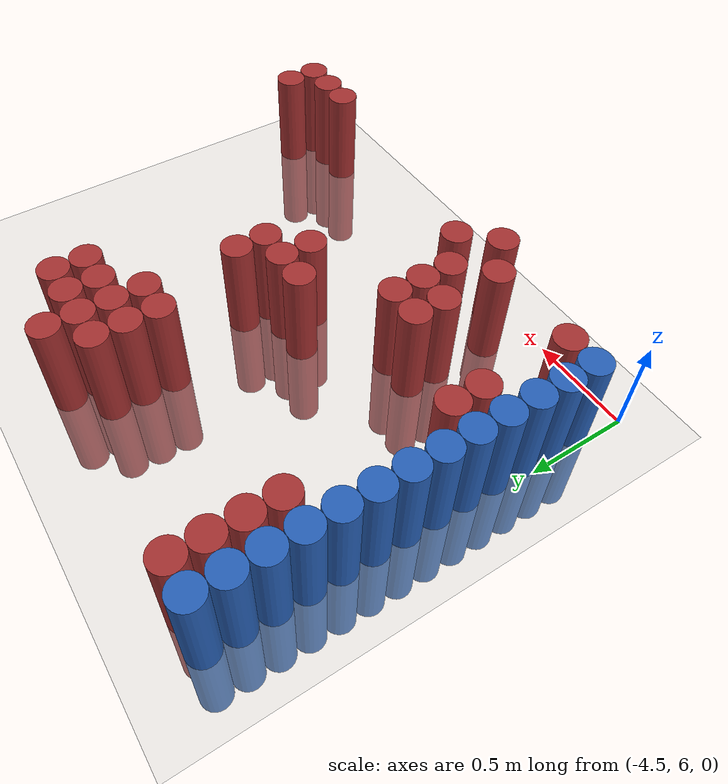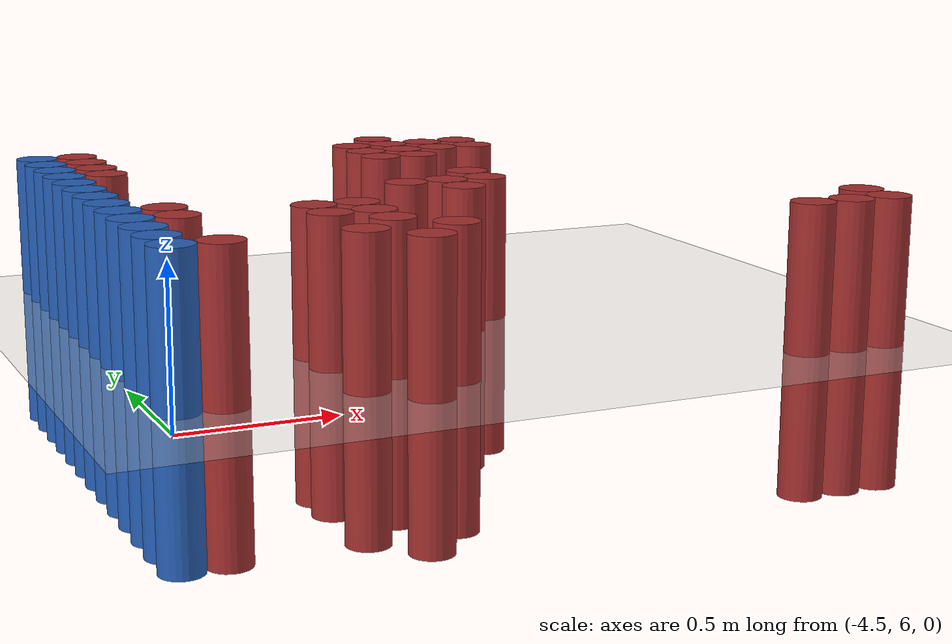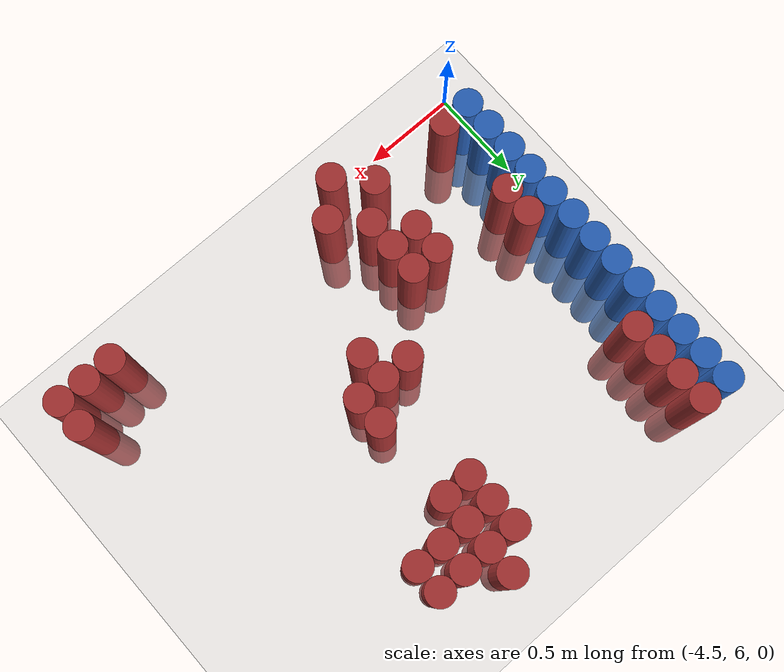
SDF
<sdf version="1.6">
 <world name="default">
  <model name="ground_plane">
   <static>1</static>
   <link name="link">
    <collision name="collision">
     <geometry><plane><normal>0 0 1</normal><size>100 100</size></plane></geometry>
     <surface><friction><ode><mu>100</mu><mu2>50</mu2></ode></friction></surface>
    </collision>
    <visual name="visual">
     <cast_shadows>0</cast_shadows>
     <geometry><plane><normal>0 0 1</normal><size>100 100</size></plane></geometry>
     <material>
      <script><uri>file://media/materials/scripts/gazebo.material</uri><name>Gazebo/Grey</name></script>
     </material>
    </visual>
   </link>
  </model>
  <model name="unit_cylinder_103">
   <static>1</static>
   <pose>-4.425000 6.225000 0.000000 0.000000 0.000000 0.000000</pose>
   <link name="link">
    <inertial>
     <mass>1</mass>
     <inertia><ixx>0.145833</ixx><ixy>0</ixy><ixz>0</ixz><iyy>0.145833</iyy><iyz>0</iyz><izz>0.125</izz></inertia>
    </inertial>
    <collision name="collision">
     <geometry><cylinder><radius>0.075000</radius><length>1</length></cylinder></geometry>
    </collision>
    <visual name="visual">
     <geometry><cylinder><radius>0.075000</radius><length>1</length></cylinder></geometry>
     <material>
      <ambient>0.152000 0.379000 0.720000 1</ambient>
      <diffuse>0.152000 0.379000 0.720000 1</diffuse>
     </material>
     <material>
      <script><name>Gazebo/Grey</name><uri>file://media/materials/scripts/gazebo.material</uri></script>
     </material>
    </visual>
   </link>
  </model>
  <model name="unit_cylinder_104">
   <static>1</static>
   <pose>-4.425000 6.375000 0.000000 0.000000 0.000000 0.000000</pose>
   <link name="link">
    <inertial>
     <mass>1</mass>
     <inertia><ixx>0.145833</ixx><ixy>0</ixy><ixz>0</ixz><iyy>0.145833</iyy><iyz>0</iyz><izz>0.125</izz></inertia>
    </inertial>
    <collision name="collision">
     <geometry><cylinder><radius>0.075000</radius><length>1</length></cylinder></geometry>
    </collision>
    <visual name="visual">
     <geometry><cylinder><radius>0.075000</radius><length>1</length></cylinder></geometry>
     <material>
      <ambient>0.152000 0.379000 0.720000 1</ambient>
      <diffuse>0.152000 0.379000 0.720000 1</diffuse>
     </material>
     <material>
      <script><name>Gazebo/Grey</name><uri>file://media/materials/scripts/gazebo.material</uri></script>
     </material>
    </visual>
   </link>
  </model>
  <model name="unit_cylinder_105">
   <static>1</static>
   <pose>-4.425000 6.525000 0.000000 0.000000 0.000000 0.000000</pose>
   <link name="link">
    <inertial>
     <mass>1</mass>
     <inertia><ixx>0.145833</ixx><ixy>0</ixy><ixz>0</ixz><iyy>0.145833</iyy><iyz>0</iyz><izz>0.125</izz></inertia>
    </inertial>
    <collision name="collision">
     <geometry><cylinder><radius>0.075000</radius><length>1</length></cylinder></geometry>
    </collision>
    <visual name="visual">
     <geometry><cylinder><radius>0.075000</radius><length>1</length></cylinder></geometry>
     <material>
      <ambient>0.152000 0.379000 0.720000 1</ambient>
      <diffuse>0.152000 0.379000 0.720000 1</diffuse>
     </material>
     <material>
      <script><name>Gazebo/Grey</name><uri>file://media/materials/scripts/gazebo.material</uri></script>
     </material>
    </visual>
   </link>
  </model>
  <model name="unit_cylinder_106">
   <static>1</static>
   <pose>-4.425000 6.675000 0.000000 0.000000 0.000000 0.000000</pose>
   <link name="link">
    <inertial>
     <mass>1</mass>
     <inertia><ixx>0.145833</ixx><ixy>0</ixy><ixz>0</ixz><iyy>0.145833</iyy><iyz>0</iyz><izz>0.125</izz></inertia>
    </inertial>
    <collision name="collision">
     <geometry><cylinder><radius>0.075000</radius><length>1</length></cylinder></geometry>
    </collision>
    <visual name="visual">
     <geometry><cylinder><radius>0.075000</radius><length>1</length></cylinder></geometry>
     <material>
      <ambient>0.152000 0.379000 0.720000 1</ambient>
      <diffuse>0.152000 0.379000 0.720000 1</diffuse>
     </material>
     <material>
      <script><name>Gazebo/Grey</name><uri>file://media/materials/scripts/gazebo.material</uri></script>
     </material>
    </visual>
   </link>
  </model>
  <model name="unit_cylinder_107">
   <static>1</static>
   <pose>-4.425000 6.825000 0.000000 0.000000 0.000000 0.000000</pose>
   <link name="link">
    <inertial>
     <mass>1</mass>
     <inertia><ixx>0.145833</ixx><ixy>0</ixy><ixz>0</ixz><iyy>0.145833</iyy><iyz>0</iyz><izz>0.125</izz></inertia>
    </inertial>
    <collision name="collision">
     <geometry><cylinder><radius>0.075000</radius><length>1</length></cylinder></geometry>
    </collision>
    <visual name="visual">
     <geometry><cylinder><radius>0.075000</radius><length>1</length></cylinder></geometry>
     <material>
      <ambient>0.152000 0.379000 0.720000 1</ambient>
      <diffuse>0.152000 0.379000 0.720000 1</diffuse>
     </material>
     <material>
      <script><name>Gazebo/Grey</name><uri>file://media/materials/scripts/gazebo.material</uri></script>
     </material>
    </visual>
   </link>
  </model>
  <model name="unit_cylinder_108">
   <static>1</static>
   <pose>-4.425000 6.975000 0.000000 0.000000 0.000000 0.000000</pose>
   <link name="link">
    <inertial>
     <mass>1</mass>
     <inertia><ixx>0.145833</ixx><ixy>0</ixy><ixz>0</ixz><iyy>0.145833</iyy><iyz>0</iyz><izz>0.125</izz></inertia>
    </inertial>
    <collision name="collision">
     <geometry><cylinder><radius>0.075000</radius><length>1</length></cylinder></geometry>
    </collision>
    <visual name="visual">
     <geometry><cylinder><radius>0.075000</radius><length>1</length></cylinder></geometry>
     <material>
      <ambient>0.152000 0.379000 0.720000 1</ambient>
      <diffuse>0.152000 0.379000 0.720000 1</diffuse>
     </material>
     <material>
      <script><name>Gazebo/Grey</name><uri>file://media/materials/scripts/gazebo.material</uri></script>
     </material>
    </visual>
   </link>
  </model>
  <model name="unit_cylinder_109">
   <static>1</static>
   <pose>-4.425000 7.125000 0.000000 0.000000 0.000000 0.000000</pose>
   <link name="link">
    <inertial>
     <mass>1</mass>
     <inertia><ixx>0.145833</ixx><ixy>0</ixy><ixz>0</ixz><iyy>0.145833</iyy><iyz>0</iyz><izz>0.125</izz></inertia>
    </inertial>
    <collision name="collision">
     <geometry><cylinder><radius>0.075000</radius><length>1</length></cylinder></geometry>
    </collision>
    <visual name="visual">
     <geometry><cylinder><radius>0.075000</radius><length>1</length></cylinder></geometry>
     <material>
      <ambient>0.152000 0.379000 0.720000 1</ambient>
      <diffuse>0.152000 0.379000 0.720000 1</diffuse>
     </material>
     <material>
      <script><name>Gazebo/Grey</name><uri>file://media/materials/scripts/gazebo.material</uri></script>
     </material>
    </visual>
   </link>
  </model>
  <model name="unit_cylinder_110">
   <static>1</static>
   <pose>-4.425000 7.275000 0.000000 0.000000 0.000000 0.000000</pose>
   <link name="link">
    <inertial>
     <mass>1</mass>
     <inertia><ixx>0.145833</ixx><ixy>0</ixy><ixz>0</ixz><iyy>0.145833</iyy><iyz>0</iyz><izz>0.125</izz></inertia>
    </inertial>
    <collision name="collision">
     <geometry><cylinder><radius>0.075000</radius><length>1</length></cylinder></geometry>
    </collision>
    <visual name="visual">
     <geometry><cylinder><radius>0.075000</radius><length>1</length></cylinder></geometry>
     <material>
      <ambient>0.152000 0.379000 0.720000 1</ambient>
      <diffuse>0.152000 0.379000 0.720000 1</diffuse>
     </material>
     <material>
      <script><name>Gazebo/Grey</name><uri>file://media/materials/scripts/gazebo.material</uri></script>
     </material>
    </visual>
   </link>
  </model>
  <model name="unit_cylinder_111">
   <static>1</static>
   <pose>-4.425000 7.425000 0.000000 0.000000 0.000000 0.000000</pose>
   <link name="link">
    <inertial>
     <mass>1</mass>
     <inertia><ixx>0.145833</ixx><ixy>0</ixy><ixz>0</ixz><iyy>0.145833</iyy><iyz>0</iyz><izz>0.125</izz></inertia>
    </inertial>
    <collision name="collision">
     <geometry><cylinder><radius>0.075000</radius><length>1</length></cylinder></geometry>
    </collision>
    <visual name="visual">
     <geometry><cylinder><radius>0.075000</radius><length>1</length></cylinder></geometry>
     <material>
      <ambient>0.152000 0.379000 0.720000 1</ambient>
      <diffuse>0.152000 0.379000 0.720000 1</diffuse>
     </material>
     <material>
      <script><name>Gazebo/Grey</name><uri>file://media/materials/scripts/gazebo.material</uri></script>
     </material>
    </visual>
   </link>
  </model>
  <model name="unit_cylinder_112">
   <static>1</static>
   <pose>-4.425000 7.575000 0.000000 0.000000 0.000000 0.000000</pose>
   <link name="link">
    <inertial>
     <mass>1</mass>
     <inertia><ixx>0.145833</ixx><ixy>0</ixy><ixz>0</ixz><iyy>0.145833</iyy><iyz>0</iyz><izz>0.125</izz></inertia>
    </inertial>
    <collision name="collision">
     <geometry><cylinder><radius>0.075000</radius><length>1</length></cylinder></geometry>
    </collision>
    <visual name="visual">
     <geometry><cylinder><radius>0.075000</radius><length>1</length></cylinder></geometry>
     <material>
      <ambient>0.152000 0.379000 0.720000 1</ambient>
      <diffuse>0.152000 0.379000 0.720000 1</diffuse>
     </material>
     <material>
      <script><name>Gazebo/Grey</name><uri>file://media/materials/scripts/gazebo.material</uri></script>
     </material>
    </visual>
   </link>
  </model>
  <model name="unit_cylinder_113">
   <static>1</static>
   <pose>-4.425000 7.725000 0.000000 0.000000 0.000000 0.000000</pose>
   <link name="link">
    <inertial>
     <mass>1</mass>
     <inertia><ixx>0.145833</ixx><ixy>0</ixy><ixz>0</ixz><iyy>0.145833</iyy><iyz>0</iyz><izz>0.125</izz></inertia>
    </inertial>
    <collision name="collision">
     <geometry><cylinder><radius>0.075000</radius><length>1</length></cylinder></geometry>
    </collision>
    <visual name="visual">
     <geometry><cylinder><radius>0.075000</radius><length>1</length></cylinder></geometry>
     <material>
      <ambient>0.152000 0.379000 0.720000 1</ambient>
      <diffuse>0.152000 0.379000 0.720000 1</diffuse>
     </material>
     <material>
      <script><name>Gazebo/Grey</name><uri>file://media/materials/scripts/gazebo.material</uri></script>
     </material>
    </visual>
   </link>
  </model>
  <model name="unit_cylinder_114">
   <static>1</static>
   <pose>-4.425000 7.875000 0.000000 0.000000 0.000000 0.000000</pose>
   <link name="link">
    <inertial>
     <mass>1</mass>
     <inertia><ixx>0.145833</ixx><ixy>0</ixy><ixz>0</ixz><iyy>0.145833</iyy><iyz>0</iyz><izz>0.125</izz></inertia>
    </inertial>
    <collision name="collision">
     <geometry><cylinder><radius>0.075000</radius><length>1</length></cylinder></geometry>
    </collision>
    <visual name="visual">
     <geometry><cylinder><radius>0.075000</radius><length>1</length></cylinder></geometry>
     <material>
      <ambient>0.152000 0.379000 0.720000 1</ambient>
      <diffuse>0.152000 0.379000 0.720000 1</diffuse>
     </material>
     <material>
      <script><name>Gazebo/Grey</name><uri>file://media/materials/scripts/gazebo.material</uri></script>
     </material>
    </visual>
   </link>
  </model>
  <model name="unit_cylinder_115">
   <static>1</static>
   <pose>-4.425000 8.025000 0.000000 0.000000 0.000000 0.000000</pose>
   <link name="link">
    <inertial>
     <mass>1</mass>
     <inertia><ixx>0.145833</ixx><ixy>0</ixy><ixz>0</ixz><iyy>0.145833</iyy><iyz>0</iyz><izz>0.125</izz></inertia>
    </inertial>
    <collision name="collision">
     <geometry><cylinder><radius>0.075000</radius><length>1</length></cylinder></geometry>
    </collision>
    <visual name="visual">
     <geometry><cylinder><radius>0.075000</radius><length>1</length></cylinder></geometry>
     <material>
      <ambient>0.152000 0.379000 0.720000 1</ambient>
      <diffuse>0.152000 0.379000 0.720000 1</diffuse>
     </material>
     <material>
      <script><name>Gazebo/Grey</name><uri>file://media/materials/scripts/gazebo.material</uri></script>
     </material>
    </visual>
   </link>
  </model>
  <model name="unit_cylinder_129">
   <static>1</static>
   <pose>-4.275000 6.225000 0.000000 0.000000 0.000000 0.000000</pose>
   <link name="link">
    <inertial>
     <mass>1</mass>
     <inertia><ixx>0.145833</ixx><ixy>0</ixy><ixz>0</ixz><iyy>0.145833</iyy><iyz>0</iyz><izz>0.125</izz></inertia>
    </inertial>
    <collision name="collision">
     <geometry><cylinder><radius>0.075000</radius><length>1</length></cylinder></geometry>
    </collision>
    <visual name="visual">
     <geometry><cylinder><radius>0.075000</radius><length>1</length></cylinder></geometry>
     <material>
      <ambient>0.648000 0.192000 0.192000 1</ambient>
      <diffuse>0.648000 0.192000 0.192000 1</diffuse>
     </material>
     <material>
      <script><name>Gazebo/Grey</name><uri>file://media/materials/scripts/gazebo.material</uri></script>
     </material>
    </visual>
   </link>
  </model>
  <model name="unit_cylinder_130">
   <static>1</static>
   <pose>-4.275000 6.675000 0.000000 0.000000 0.000000 0.000000</pose>
   <link name="link">
    <inertial>
     <mass>1</mass>
     <inertia><ixx>0.145833</ixx><ixy>0</ixy><ixz>0</ixz><iyy>0.145833</iyy><iyz>0</iyz><izz>0.125</izz></inertia>
    </inertial>
    <collision name="collision">
     <geometry><cylinder><radius>0.075000</radius><length>1</length></cylinder></geometry>
    </collision>
    <visual name="visual">
     <geometry><cylinder><radius>0.075000</radius><length>1</length></cylinder></geometry>
     <material>
      <ambient>0.648000 0.192000 0.192000 1</ambient>
      <diffuse>0.648000 0.192000 0.192000 1</diffuse>
     </material>
     <material>
      <script><name>Gazebo/Grey</name><uri>file://media/materials/scripts/gazebo.material</uri></script>
     </material>
    </visual>
   </link>
  </model>
  <model name="unit_cylinder_131">
   <static>1</static>
   <pose>-4.275000 6.825000 0.000000 0.000000 0.000000 0.000000</pose>
   <link name="link">
    <inertial>
     <mass>1</mass>
     <inertia><ixx>0.145833</ixx><ixy>0</ixy><ixz>0</ixz><iyy>0.145833</iyy><iyz>0</iyz><izz>0.125</izz></inertia>
    </inertial>
    <collision name="collision">
     <geometry><cylinder><radius>0.075000</radius><length>1</length></cylinder></geometry>
    </collision>
    <visual name="visual">
     <geometry><cylinder><radius>0.075000</radius><length>1</length></cylinder></geometry>
     <material>
      <ambient>0.648000 0.192000 0.192000 1</ambient>
      <diffuse>0.648000 0.192000 0.192000 1</diffuse>
     </material>
     <material>
      <script><name>Gazebo/Grey</name><uri>file://media/materials/scripts/gazebo.material</uri></script>
     </material>
    </visual>
   </link>
  </model>
  <model name="unit_cylinder_132">
   <static>1</static>
   <pose>-4.275000 7.575000 0.000000 0.000000 0.000000 0.000000</pose>
   <link name="link">
    <inertial>
     <mass>1</mass>
     <inertia><ixx>0.145833</ixx><ixy>0</ixy><ixz>0</ixz><iyy>0.145833</iyy><iyz>0</iyz><izz>0.125</izz></inertia>
    </inertial>
    <collision name="collision">
     <geometry><cylinder><radius>0.075000</radius><length>1</length></cylinder></geometry>
    </collision>
    <visual name="visual">
     <geometry><cylinder><radius>0.075000</radius><length>1</length></cylinder></geometry>
     <material>
      <ambient>0.648000 0.192000 0.192000 1</ambient>
      <diffuse>0.648000 0.192000 0.192000 1</diffuse>
     </material>
     <material>
      <script><name>Gazebo/Grey</name><uri>file://media/materials/scripts/gazebo.material</uri></script>
     </material>
    </visual>
   </link>
  </model>
  <model name="unit_cylinder_133">
   <static>1</static>
   <pose>-4.275000 7.725000 0.000000 0.000000 0.000000 0.000000</pose>
   <link name="link">
    <inertial>
     <mass>1</mass>
     <inertia><ixx>0.145833</ixx><ixy>0</ixy><ixz>0</ixz><iyy>0.145833</iyy><iyz>0</iyz><izz>0.125</izz></inertia>
    </inertial>
    <collision name="collision">
     <geometry><cylinder><radius>0.075000</radius><length>1</length></cylinder></geometry>
    </collision>
    <visual name="visual">
     <geometry><cylinder><radius>0.075000</radius><length>1</length></cylinder></geometry>
     <material>
      <ambient>0.648000 0.192000 0.192000 1</ambient>
      <diffuse>0.648000 0.192000 0.192000 1</diffuse>
     </material>
     <material>
      <script><name>Gazebo/Grey</name><uri>file://media/materials/scripts/gazebo.material</uri></script>
     </material>
    </visual>
   </link>
  </model>
  <model name="unit_cylinder_134">
   <static>1</static>
   <pose>-4.275000 7.875000 0.000000 0.000000 0.000000 0.000000</pose>
   <link name="link">
    <inertial>
     <mass>1</mass>
     <inertia><ixx>0.145833</ixx><ixy>0</ixy><ixz>0</ixz><iyy>0.145833</iyy><iyz>0</iyz><izz>0.125</izz></inertia>
    </inertial>
    <collision name="collision">
     <geometry><cylinder><radius>0.075000</radius><length>1</length></cylinder></geometry>
    </collision>
    <visual name="visual">
     <geometry><cylinder><radius>0.075000</radius><length>1</length></cylinder></geometry>
     <material>
      <ambient>0.648000 0.192000 0.192000 1</ambient>
      <diffuse>0.648000 0.192000 0.192000 1</diffuse>
     </material>
     <material>
      <script><name>Gazebo/Grey</name><uri>file://media/materials/scripts/gazebo.material</uri></script>
     </material>
    </visual>
   </link>
  </model>
  <model name="unit_cylinder_135">
   <static>1</static>
   <pose>-4.275000 8.025000 0.000000 0.000000 0.000000 0.000000</pose>
   <link name="link">
    <inertial>
     <mass>1</mass>
     <inertia><ixx>0.145833</ixx><ixy>0</ixy><ixz>0</ixz><iyy>0.145833</iyy><iyz>0</iyz><izz>0.125</izz></inertia>
    </inertial>
    <collision name="collision">
     <geometry><cylinder><radius>0.075000</radius><length>1</length></cylinder></geometry>
    </collision>
    <visual name="visual">
     <geometry><cylinder><radius>0.075000</radius><length>1</length></cylinder></geometry>
     <material>
      <ambient>0.648000 0.192000 0.192000 1</ambient>
      <diffuse>0.648000 0.192000 0.192000 1</diffuse>
     </material>
     <material>
      <script><name>Gazebo/Grey</name><uri>file://media/materials/scripts/gazebo.material</uri></script>
     </material>
    </visual>
   </link>
  </model>
  <model name="unit_cylinder_149">
   <static>1</static>
   <pose>-3.825000 6.225000 0.000000 0.000000 0.000000 0.000000</pose>
   <link name="link">
    <inertial>
     <mass>1</mass>
     <inertia><ixx>0.145833</ixx><ixy>0</ixy><ixz>0</ixz><iyy>0.145833</iyy><iyz>0</iyz><izz>0.125</izz></inertia>
    </inertial>
    <collision name="collision">
     <geometry><cylinder><radius>0.075000</radius><length>1</length></cylinder></geometry>
    </collision>
    <visual name="visual">
     <geometry><cylinder><radius>0.075000</radius><length>1</length></cylinder></geometry>
     <material>
      <ambient>0.648000 0.192000 0.192000 1</ambient>
      <diffuse>0.648000 0.192000 0.192000 1</diffuse>
     </material>
     <material>
      <script><name>Gazebo/Grey</name><uri>file://media/materials/scripts/gazebo.material</uri></script>
     </material>
    </visual>
   </link>
  </model>
  <model name="unit_cylinder_150">
   <static>1</static>
   <pose>-3.825000 6.525000 0.000000 0.000000 0.000000 0.000000</pose>
   <link name="link">
    <inertial>
     <mass>1</mass>
     <inertia><ixx>0.145833</ixx><ixy>0</ixy><ixz>0</ixz><iyy>0.145833</iyy><iyz>0</iyz><izz>0.125</izz></inertia>
    </inertial>
    <collision name="collision">
     <geometry><cylinder><radius>0.075000</radius><length>1</length></cylinder></geometry>
    </collision>
    <visual name="visual">
     <geometry><cylinder><radius>0.075000</radius><length>1</length></cylinder></geometry>
     <material>
      <ambient>0.648000 0.192000 0.192000 1</ambient>
      <diffuse>0.648000 0.192000 0.192000 1</diffuse>
     </material>
     <material>
      <script><name>Gazebo/Grey</name><uri>file://media/materials/scripts/gazebo.material</uri></script>
     </material>
    </visual>
   </link>
  </model>
  <model name="unit_cylinder_151">
   <static>1</static>
   <pose>-3.825000 6.675000 0.000000 0.000000 0.000000 0.000000</pose>
   <link name="link">
    <inertial>
     <mass>1</mass>
     <inertia><ixx>0.145833</ixx><ixy>0</ixy><ixz>0</ixz><iyy>0.145833</iyy><iyz>0</iyz><izz>0.125</izz></inertia>
    </inertial>
    <collision name="collision">
     <geometry><cylinder><radius>0.075000</radius><length>1</length></cylinder></geometry>
    </collision>
    <visual name="visual">
     <geometry><cylinder><radius>0.075000</radius><length>1</length></cylinder></geometry>
     <material>
      <ambient>0.648000 0.192000 0.192000 1</ambient>
      <diffuse>0.648000 0.192000 0.192000 1</diffuse>
     </material>
     <material>
      <script><name>Gazebo/Grey</name><uri>file://media/materials/scripts/gazebo.material</uri></script>
     </material>
    </visual>
   </link>
  </model>
  <model name="unit_cylinder_156">
   <static>1</static>
   <pose>-3.675000 6.075000 0.000000 0.000000 0.000000 0.000000</pose>
   <link name="link">
    <inertial>
     <mass>1</mass>
     <inertia><ixx>0.145833</ixx><ixy>0</ixy><ixz>0</ixz><iyy>0.145833</iyy><iyz>0</iyz><izz>0.125</izz></inertia>
    </inertial>
    <collision name="collision">
     <geometry><cylinder><radius>0.075000</radius><length>1</length></cylinder></geometry>
    </collision>
    <visual name="visual">
     <geometry><cylinder><radius>0.075000</radius><length>1</length></cylinder></geometry>
     <material>
      <ambient>0.648000 0.192000 0.192000 1</ambient>
      <diffuse>0.648000 0.192000 0.192000 1</diffuse>
     </material>
     <material>
      <script><name>Gazebo/Grey</name><uri>file://media/materials/scripts/gazebo.material</uri></script>
     </material>
    </visual>
   </link>
  </model>
  <model name="unit_cylinder_157">
   <static>1</static>
   <pose>-3.675000 6.375000 0.000000 0.000000 0.000000 0.000000</pose>
   <link name="link">
    <inertial>
     <mass>1</mass>
     <inertia><ixx>0.145833</ixx><ixy>0</ixy><ixz>0</ixz><iyy>0.145833</iyy><iyz>0</iyz><izz>0.125</izz></inertia>
    </inertial>
    <collision name="collision">
     <geometry><cylinder><radius>0.075000</radius><length>1</length></cylinder></geometry>
    </collision>
    <visual name="visual">
     <geometry><cylinder><radius>0.075000</radius><length>1</length></cylinder></geometry>
     <material>
      <ambient>0.648000 0.192000 0.192000 1</ambient>
      <diffuse>0.648000 0.192000 0.192000 1</diffuse>
     </material>
     <material>
      <script><name>Gazebo/Grey</name><uri>file://media/materials/scripts/gazebo.material</uri></script>
     </material>
    </visual>
   </link>
  </model>
  <model name="unit_cylinder_158">
   <static>1</static>
   <pose>-3.675000 6.525000 0.000000 0.000000 0.000000 0.000000</pose>
   <link name="link">
    <inertial>
     <mass>1</mass>
     <inertia><ixx>0.145833</ixx><ixy>0</ixy><ixz>0</ixz><iyy>0.145833</iyy><iyz>0</iyz><izz>0.125</izz></inertia>
    </inertial>
    <collision name="collision">
     <geometry><cylinder><radius>0.075000</radius><length>1</length></cylinder></geometry>
    </collision>
    <visual name="visual">
     <geometry><cylinder><radius>0.075000</radius><length>1</length></cylinder></geometry>
     <material>
      <ambient>0.648000 0.192000 0.192000 1</ambient>
      <diffuse>0.648000 0.192000 0.192000 1</diffuse>
     </material>
     <material>
      <script><name>Gazebo/Grey</name><uri>file://media/materials/scripts/gazebo.material</uri></script>
     </material>
    </visual>
   </link>
  </model>
  <model name="unit_cylinder_159">
   <static>1</static>
   <pose>-3.675000 6.675000 0.000000 0.000000 0.000000 0.000000</pose>
   <link name="link">
    <inertial>
     <mass>1</mass>
     <inertia><ixx>0.145833</ixx><ixy>0</ixy><ixz>0</ixz><iyy>0.145833</iyy><iyz>0</iyz><izz>0.125</izz></inertia>
    </inertial>
    <collision name="collision">
     <geometry><cylinder><radius>0.075000</radius><length>1</length></cylinder></geometry>
    </collision>
    <visual name="visual">
     <geometry><cylinder><radius>0.075000</radius><length>1</length></cylinder></geometry>
     <material>
      <ambient>0.648000 0.192000 0.192000 1</ambient>
      <diffuse>0.648000 0.192000 0.192000 1</diffuse>
     </material>
     <material>
      <script><name>Gazebo/Grey</name><uri>file://media/materials/scripts/gazebo.material</uri></script>
     </material>
    </visual>
   </link>
  </model>
  <model name="unit_cylinder_161">
   <static>1</static>
   <pose>-3.525000 6.225000 0.000000 0.000000 0.000000 0.000000</pose>
   <link name="link">
    <inertial>
     <mass>1</mass>
     <inertia><ixx>0.145833</ixx><ixy>0</ixy><ixz>0</ixz><iyy>0.145833</iyy><iyz>0</iyz><izz>0.125</izz></inertia>
    </inertial>
    <collision name="collision">
     <geometry><cylinder><radius>0.075000</radius><length>1</length></cylinder></geometry>
    </collision>
    <visual name="visual">
     <geometry><cylinder><radius>0.075000</radius><length>1</length></cylinder></geometry>
     <material>
      <ambient>0.648000 0.192000 0.192000 1</ambient>
      <diffuse>0.648000 0.192000 0.192000 1</diffuse>
     </material>
     <material>
      <script><name>Gazebo/Grey</name><uri>file://media/materials/scripts/gazebo.material</uri></script>
     </material>
    </visual>
   </link>
  </model>
  <model name="unit_cylinder_167">
   <static>1</static>
   <pose>-3.375000 6.975000 0.000000 0.000000 0.000000 0.000000</pose>
   <link name="link">
    <inertial>
     <mass>1</mass>
     <inertia><ixx>0.145833</ixx><ixy>0</ixy><ixz>0</ixz><iyy>0.145833</iyy><iyz>0</iyz><izz>0.125</izz></inertia>
    </inertial>
    <collision name="collision">
     <geometry><cylinder><radius>0.075000</radius><length>1</length></cylinder></geometry>
    </collision>
    <visual name="visual">
     <geometry><cylinder><radius>0.075000</radius><length>1</length></cylinder></geometry>
     <material>
      <ambient>0.648000 0.192000 0.192000 1</ambient>
      <diffuse>0.648000 0.192000 0.192000 1</diffuse>
     </material>
     <material>
      <script><name>Gazebo/Grey</name><uri>file://media/materials/scripts/gazebo.material</uri></script>
     </material>
    </visual>
   </link>
  </model>
  <model name="unit_cylinder_174">
   <static>1</static>
   <pose>-3.225000 6.825000 0.000000 0.000000 0.000000 0.000000</pose>
   <link name="link">
    <inertial>
     <mass>1</mass>
     <inertia><ixx>0.145833</ixx><ixy>0</ixy><ixz>0</ixz><iyy>0.145833</iyy><iyz>0</iyz><izz>0.125</izz></inertia>
    </inertial>
    <collision name="collision">
     <geometry><cylinder><radius>0.075000</radius><length>1</length></cylinder></geometry>
    </collision>
    <visual name="visual">
     <geometry><cylinder><radius>0.075000</radius><length>1</length></cylinder></geometry>
     <material>
      <ambient>0.648000 0.192000 0.192000 1</ambient>
      <diffuse>0.648000 0.192000 0.192000 1</diffuse>
     </material>
     <material>
      <script><name>Gazebo/Grey</name><uri>file://media/materials/scripts/gazebo.material</uri></script>
     </material>
    </visual>
   </link>
  </model>
  <model name="unit_cylinder_175">
   <static>1</static>
   <pose>-3.225000 6.975000 0.000000 0.000000 0.000000 0.000000</pose>
   <link name="link">
    <inertial>
     <mass>1</mass>
     <inertia><ixx>0.145833</ixx><ixy>0</ixy><ixz>0</ixz><iyy>0.145833</iyy><iyz>0</iyz><izz>0.125</izz></inertia>
    </inertial>
    <collision name="collision">
     <geometry><cylinder><radius>0.075000</radius><length>1</length></cylinder></geometry>
    </collision>
    <visual name="visual">
     <geometry><cylinder><radius>0.075000</radius><length>1</length></cylinder></geometry>
     <material>
      <ambient>0.648000 0.192000 0.192000 1</ambient>
      <diffuse>0.648000 0.192000 0.192000 1</diffuse>
     </material>
     <material>
      <script><name>Gazebo/Grey</name><uri>file://media/materials/scripts/gazebo.material</uri></script>
     </material>
    </visual>
   </link>
  </model>
  <model name="unit_cylinder_176">
   <static>1</static>
   <pose>-3.225000 7.575000 0.000000 0.000000 0.000000 0.000000</pose>
   <link name="link">
    <inertial>
     <mass>1</mass>
     <inertia><ixx>0.145833</ixx><ixy>0</ixy><ixz>0</ixz><iyy>0.145833</iyy><iyz>0</iyz><izz>0.125</izz></inertia>
    </inertial>
    <collision name="collision">
     <geometry><cylinder><radius>0.075000</radius><length>1</length></cylinder></geometry>
    </collision>
    <visual name="visual">
     <geometry><cylinder><radius>0.075000</radius><length>1</length></cylinder></geometry>
     <material>
      <ambient>0.648000 0.192000 0.192000 1</ambient>
      <diffuse>0.648000 0.192000 0.192000 1</diffuse>
     </material>
     <material>
      <script><name>Gazebo/Grey</name><uri>file://media/materials/scripts/gazebo.material</uri></script>
     </material>
    </visual>
   </link>
  </model>
  <model name="unit_cylinder_177">
   <static>1</static>
   <pose>-3.225000 7.725000 0.000000 0.000000 0.000000 0.000000</pose>
   <link name="link">
    <inertial>
     <mass>1</mass>
     <inertia><ixx>0.145833</ixx><ixy>0</ixy><ixz>0</ixz><iyy>0.145833</iyy><iyz>0</iyz><izz>0.125</izz></inertia>
    </inertial>
    <collision name="collision">
     <geometry><cylinder><radius>0.075000</radius><length>1</length></cylinder></geometry>
    </collision>
    <visual name="visual">
     <geometry><cylinder><radius>0.075000</radius><length>1</length></cylinder></geometry>
     <material>
      <ambient>0.648000 0.192000 0.192000 1</ambient>
      <diffuse>0.648000 0.192000 0.192000 1</diffuse>
     </material>
     <material>
      <script><name>Gazebo/Grey</name><uri>file://media/materials/scripts/gazebo.material</uri></script>
     </material>
    </visual>
   </link>
  </model>
  <model name="unit_cylinder_178">
   <static>1</static>
   <pose>-3.225000 7.875000 0.000000 0.000000 0.000000 0.000000</pose>
   <link name="link">
    <inertial>
     <mass>1</mass>
     <inertia><ixx>0.145833</ixx><ixy>0</ixy><ixz>0</ixz><iyy>0.145833</iyy><iyz>0</iyz><izz>0.125</izz></inertia>
    </inertial>
    <collision name="collision">
     <geometry><cylinder><radius>0.075000</radius><length>1</length></cylinder></geometry>
    </collision>
    <visual name="visual">
     <geometry><cylinder><radius>0.075000</radius><length>1</length></cylinder></geometry>
     <material>
      <ambient>0.648000 0.192000 0.192000 1</ambient>
      <diffuse>0.648000 0.192000 0.192000 1</diffuse>
     </material>
     <material>
      <script><name>Gazebo/Grey</name><uri>file://media/materials/scripts/gazebo.material</uri></script>
     </material>
    </visual>
   </link>
  </model>
  <model name="unit_cylinder_184">
   <static>1</static>
   <pose>-3.075000 6.975000 0.000000 0.000000 0.000000 0.000000</pose>
   <link name="link">
    <inertial>
     <mass>1</mass>
     <inertia><ixx>0.145833</ixx><ixy>0</ixy><ixz>0</ixz><iyy>0.145833</iyy><iyz>0</iyz><izz>0.125</izz></inertia>
    </inertial>
    <collision name="collision">
     <geometry><cylinder><radius>0.075000</radius><length>1</length></cylinder></geometry>
    </collision>
    <visual name="visual">
     <geometry><cylinder><radius>0.075000</radius><length>1</length></cylinder></geometry>
     <material>
      <ambient>0.648000 0.192000 0.192000 1</ambient>
      <diffuse>0.648000 0.192000 0.192000 1</diffuse>
     </material>
     <material>
      <script><name>Gazebo/Grey</name><uri>file://media/materials/scripts/gazebo.material</uri></script>
     </material>
    </visual>
   </link>
  </model>
  <model name="unit_cylinder_185">
   <static>1</static>
   <pose>-3.075000 7.125000 0.000000 0.000000 0.000000 0.000000</pose>
   <link name="link">
    <inertial>
     <mass>1</mass>
     <inertia><ixx>0.145833</ixx><ixy>0</ixy><ixz>0</ixz><iyy>0.145833</iyy><iyz>0</iyz><izz>0.125</izz></inertia>
    </inertial>
    <collision name="collision">
     <geometry><cylinder><radius>0.075000</radius><length>1</length></cylinder></geometry>
    </collision>
    <visual name="visual">
     <geometry><cylinder><radius>0.075000</radius><length>1</length></cylinder></geometry>
     <material>
      <ambient>0.648000 0.192000 0.192000 1</ambient>
      <diffuse>0.648000 0.192000 0.192000 1</diffuse>
     </material>
     <material>
      <script><name>Gazebo/Grey</name><uri>file://media/materials/scripts/gazebo.material</uri></script>
     </material>
    </visual>
   </link>
  </model>
  <model name="unit_cylinder_186">
   <static>1</static>
   <pose>-3.075000 7.575000 0.000000 0.000000 0.000000 0.000000</pose>
   <link name="link">
    <inertial>
     <mass>1</mass>
     <inertia><ixx>0.145833</ixx><ixy>0</ixy><ixz>0</ixz><iyy>0.145833</iyy><iyz>0</iyz><izz>0.125</izz></inertia>
    </inertial>
    <collision name="collision">
     <geometry><cylinder><radius>0.075000</radius><length>1</length></cylinder></geometry>
    </collision>
    <visual name="visual">
     <geometry><cylinder><radius>0.075000</radius><length>1</length></cylinder></geometry>
     <material>
      <ambient>0.648000 0.192000 0.192000 1</ambient>
      <diffuse>0.648000 0.192000 0.192000 1</diffuse>
     </material>
     <material>
      <script><name>Gazebo/Grey</name><uri>file://media/materials/scripts/gazebo.material</uri></script>
     </material>
    </visual>
   </link>
  </model>
  <model name="unit_cylinder_187">
   <static>1</static>
   <pose>-3.075000 7.725000 0.000000 0.000000 0.000000 0.000000</pose>
   <link name="link">
    <inertial>
     <mass>1</mass>
     <inertia><ixx>0.145833</ixx><ixy>0</ixy><ixz>0</ixz><iyy>0.145833</iyy><iyz>0</iyz><izz>0.125</izz></inertia>
    </inertial>
    <collision name="collision">
     <geometry><cylinder><radius>0.075000</radius><length>1</length></cylinder></geometry>
    </collision>
    <visual name="visual">
     <geometry><cylinder><radius>0.075000</radius><length>1</length></cylinder></geometry>
     <material>
      <ambient>0.648000 0.192000 0.192000 1</ambient>
      <diffuse>0.648000 0.192000 0.192000 1</diffuse>
     </material>
     <material>
      <script><name>Gazebo/Grey</name><uri>file://media/materials/scripts/gazebo.material</uri></script>
     </material>
    </visual>
   </link>
  </model>
  <model name="unit_cylinder_188">
   <static>1</static>
   <pose>-3.075000 7.875000 0.000000 0.000000 0.000000 0.000000</pose>
   <link name="link">
    <inertial>
     <mass>1</mass>
     <inertia><ixx>0.145833</ixx><ixy>0</ixy><ixz>0</ixz><iyy>0.145833</iyy><iyz>0</iyz><izz>0.125</izz></inertia>
    </inertial>
    <collision name="collision">
     <geometry><cylinder><radius>0.075000</radius><length>1</length></cylinder></geometry>
    </collision>
    <visual name="visual">
     <geometry><cylinder><radius>0.075000</radius><length>1</length></cylinder></geometry>
     <material>
      <ambient>0.648000 0.192000 0.192000 1</ambient>
      <diffuse>0.648000 0.192000 0.192000 1</diffuse>
     </material>
     <material>
      <script><name>Gazebo/Grey</name><uri>file://media/materials/scripts/gazebo.material</uri></script>
     </material>
    </visual>
   </link>
  </model>
  <model name="unit_cylinder_189">
   <static>1</static>
   <pose>-3.075000 8.025000 0.000000 0.000000 0.000000 0.000000</pose>
   <link name="link">
    <inertial>
     <mass>1</mass>
     <inertia><ixx>0.145833</ixx><ixy>0</ixy><ixz>0</ixz><iyy>0.145833</iyy><iyz>0</iyz><izz>0.125</izz></inertia>
    </inertial>
    <collision name="collision">
     <geometry><cylinder><radius>0.075000</radius><length>1</length></cylinder></geometry>
    </collision>
    <visual name="visual">
     <geometry><cylinder><radius>0.075000</radius><length>1</length></cylinder></geometry>
     <material>
      <ambient>0.648000 0.192000 0.192000 1</ambient>
      <diffuse>0.648000 0.192000 0.192000 1</diffuse>
     </material>
     <material>
      <script><name>Gazebo/Grey</name><uri>file://media/materials/scripts/gazebo.material</uri></script>
     </material>
    </visual>
   </link>
  </model>
  <model name="unit_cylinder_194">
   <static>1</static>
   <pose>-2.925000 7.725000 0.000000 0.000000 0.000000 0.000000</pose>
   <link name="link">
    <inertial>
     <mass>1</mass>
     <inertia><ixx>0.145833</ixx><ixy>0</ixy><ixz>0</ixz><iyy>0.145833</iyy><iyz>0</iyz><izz>0.125</izz></inertia>
    </inertial>
    <collision name="collision">
     <geometry><cylinder><radius>0.075000</radius><length>1</length></cylinder></geometry>
    </collision>
    <visual name="visual">
     <geometry><cylinder><radius>0.075000</radius><length>1</length></cylinder></geometry>
     <material>
      <ambient>0.648000 0.192000 0.192000 1</ambient>
      <diffuse>0.648000 0.192000 0.192000 1</diffuse>
     </material>
     <material>
      <script><name>Gazebo/Grey</name><uri>file://media/materials/scripts/gazebo.material</uri></script>
     </material>
    </visual>
   </link>
  </model>
  <model name="unit_cylinder_195">
   <static>1</static>
   <pose>-2.925000 7.875000 0.000000 0.000000 0.000000 0.000000</pose>
   <link name="link">
    <inertial>
     <mass>1</mass>
     <inertia><ixx>0.145833</ixx><ixy>0</ixy><ixz>0</ixz><iyy>0.145833</iyy><iyz>0</iyz><izz>0.125</izz></inertia>
    </inertial>
    <collision name="collision">
     <geometry><cylinder><radius>0.075000</radius><length>1</length></cylinder></geometry>
    </collision>
    <visual name="visual">
     <geometry><cylinder><radius>0.075000</radius><length>1</length></cylinder></geometry>
     <material>
      <ambient>0.648000 0.192000 0.192000 1</ambient>
      <diffuse>0.648000 0.192000 0.192000 1</diffuse>
     </material>
     <material>
      <script><name>Gazebo/Grey</name><uri>file://media/materials/scripts/gazebo.material</uri></script>
     </material>
    </visual>
   </link>
  </model>
  <model name="unit_cylinder_199">
   <static>1</static>
   <pose>-2.775000 7.725000 0.000000 0.000000 0.000000 0.000000</pose>
   <link name="link">
    <inertial>
     <mass>1</mass>
     <inertia><ixx>0.145833</ixx><ixy>0</ixy><ixz>0</ixz><iyy>0.145833</iyy><iyz>0</iyz><izz>0.125</izz></inertia>
    </inertial>
    <collision name="collision">
     <geometry><cylinder><radius>0.075000</radius><length>1</length></cylinder></geometry>
    </collision>
    <visual name="visual">
     <geometry><cylinder><radius>0.075000</radius><length>1</length></cylinder></geometry>
     <material>
      <ambient>0.648000 0.192000 0.192000 1</ambient>
      <diffuse>0.648000 0.192000 0.192000 1</diffuse>
     </material>
     <material>
      <script><name>Gazebo/Grey</name><uri>file://media/materials/scripts/gazebo.material</uri></script>
     </material>
    </visual>
   </link>
  </model>
  <model name="unit_cylinder_200">
   <static>1</static>
   <pose>-2.775000 7.875000 0.000000 0.000000 0.000000 0.000000</pose>
   <link name="link">
    <inertial>
     <mass>1</mass>
     <inertia><ixx>0.145833</ixx><ixy>0</ixy><ixz>0</ixz><iyy>0.145833</iyy><iyz>0</iyz><izz>0.125</izz></inertia>
    </inertial>
    <collision name="collision">
     <geometry><cylinder><radius>0.075000</radius><length>1</length></cylinder></geometry>
    </collision>
    <visual name="visual">
     <geometry><cylinder><radius>0.075000</radius><length>1</length></cylinder></geometry>
     <material>
      <ambient>0.648000 0.192000 0.192000 1</ambient>
      <diffuse>0.648000 0.192000 0.192000 1</diffuse>
     </material>
     <material>
      <script><name>Gazebo/Grey</name><uri>file://media/materials/scripts/gazebo.material</uri></script>
     </material>
    </visual>
   </link>
  </model>
  <model name="unit_cylinder_206">
   <static>1</static>
   <pose>-2.325000 6.075000 0.000000 0.000000 0.000000 0.000000</pose>
   <link name="link">
    <inertial>
     <mass>1</mass>
     <inertia><ixx>0.145833</ixx><ixy>0</ixy><ixz>0</ixz><iyy>0.145833</iyy><iyz>0</iyz><izz>0.125</izz></inertia>
    </inertial>
    <collision name="collision">
     <geometry><cylinder><radius>0.075000</radius><length>1</length></cylinder></geometry>
    </collision>
    <visual name="visual">
     <geometry><cylinder><radius>0.075000</radius><length>1</length></cylinder></geometry>
     <material>
      <ambient>0.648000 0.192000 0.192000 1</ambient>
      <diffuse>0.648000 0.192000 0.192000 1</diffuse>
     </material>
     <material>
      <script><name>Gazebo/Grey</name><uri>file://media/materials/scripts/gazebo.material</uri></script>
     </material>
    </visual>
   </link>
  </model>
  <model name="unit_cylinder_208">
   <static>1</static>
   <pose>-2.175000 6.075000 0.000000 0.000000 0.000000 0.000000</pose>
   <link name="link">
    <inertial>
     <mass>1</mass>
     <inertia><ixx>0.145833</ixx><ixy>0</ixy><ixz>0</ixz><iyy>0.145833</iyy><iyz>0</iyz><izz>0.125</izz></inertia>
    </inertial>
    <collision name="collision">
     <geometry><cylinder><radius>0.075000</radius><length>1</length></cylinder></geometry>
    </collision>
    <visual name="visual">
     <geometry><cylinder><radius>0.075000</radius><length>1</length></cylinder></geometry>
     <material>
      <ambient>0.648000 0.192000 0.192000 1</ambient>
      <diffuse>0.648000 0.192000 0.192000 1</diffuse>
     </material>
     <material>
      <script><name>Gazebo/Grey</name><uri>file://media/materials/scripts/gazebo.material</uri></script>
     </material>
    </visual>
   </link>
  </model>
  <model name="unit_cylinder_211">
   <static>1</static>
   <pose>-2.025000 6.075000 0.000000 0.000000 0.000000 0.000000</pose>
   <link name="link">
    <inertial>
     <mass>1</mass>
     <inertia><ixx>0.145833</ixx><ixy>0</ixy><ixz>0</ixz><iyy>0.145833</iyy><iyz>0</iyz><izz>0.125</izz></inertia>
    </inertial>
    <collision name="collision">
     <geometry><cylinder><radius>0.075000</radius><length>1</length></cylinder></geometry>
    </collision>
    <visual name="visual">
     <geometry><cylinder><radius>0.075000</radius><length>1</length></cylinder></geometry>
     <material>
      <ambient>0.648000 0.192000 0.192000 1</ambient>
      <diffuse>0.648000 0.192000 0.192000 1</diffuse>
     </material>
     <material>
      <script><name>Gazebo/Grey</name><uri>file://media/materials/scripts/gazebo.material</uri></script>
     </material>
    </visual>
   </link>
  </model>
  <model name="unit_cylinder_212">
   <static>1</static>
   <pose>-2.025000 6.225000 0.000000 0.000000 0.000000 0.000000</pose>
   <link name="link">
    <inertial>
     <mass>1</mass>
     <inertia><ixx>0.145833</ixx><ixy>0</ixy><ixz>0</ixz><iyy>0.145833</iyy><iyz>0</iyz><izz>0.125</izz></inertia>
    </inertial>
    <collision name="collision">
     <geometry><cylinder><radius>0.075000</radius><length>1</length></cylinder></geometry>
    </collision>
    <visual name="visual">
     <geometry><cylinder><radius>0.075000</radius><length>1</length></cylinder></geometry>
     <material>
      <ambient>0.648000 0.192000 0.192000 1</ambient>
      <diffuse>0.648000 0.192000 0.192000 1</diffuse>
     </material>
     <material>
      <script><name>Gazebo/Grey</name><uri>file://media/materials/scripts/gazebo.material</uri></script>
     </material>
    </visual>
   </link>
  </model>
 </world>
</sdf>
